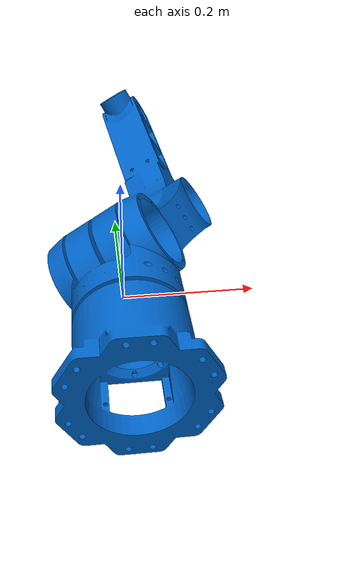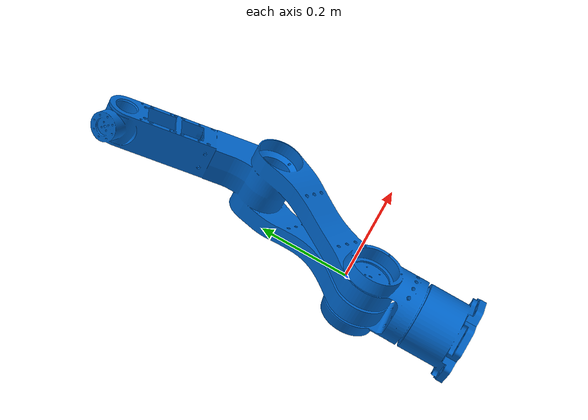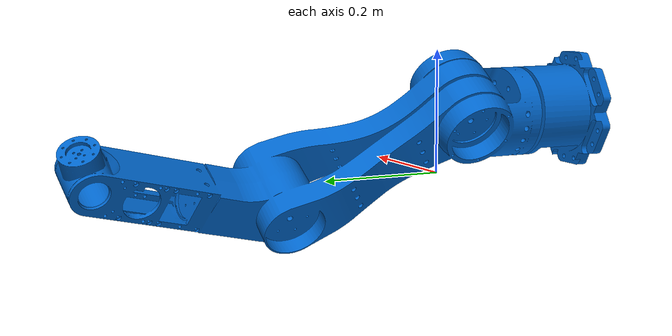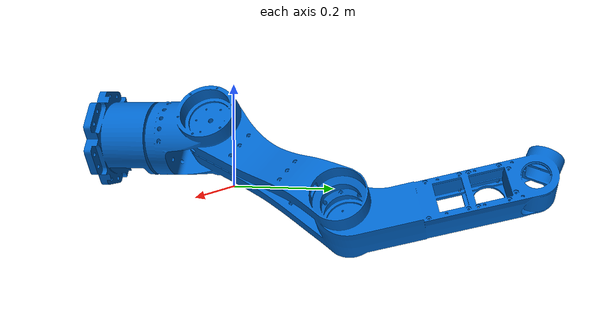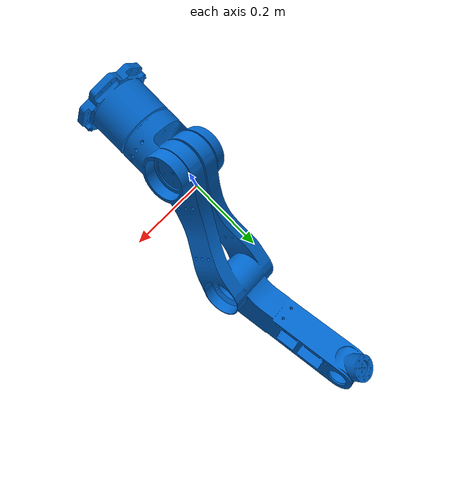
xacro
<?xml version="1.0"?>
<robot xmlns:xacro="http://www.ros.org/wiki/xacro">

  <link name="base_link">
    <!-- 3D Graphics / Rendering -->
    <visual>
      <origin xyz="0 0 0.227" rpy="0 0 0"/>
      <geometry>
        <mesh filename="package://arm_description/meshes/example.stl" scale="0.001 0.001 0.001"/>
      </geometry>
      <material name="blue">
        <color rgba="0.0 0.4 0.8 1.0"/>
      </material>
    </visual>

    <!-- Physical Physics / Hitbox -->
    <collision>
      <origin xyz="0 0 0.277" rpy="0 0 0"/>
      <geometry>
        <mesh filename="package://arm_description/meshes/example.stl" scale="0.001 0.001 0.001"/>
      </geometry>
    </collision>
  </link>

</robot>
